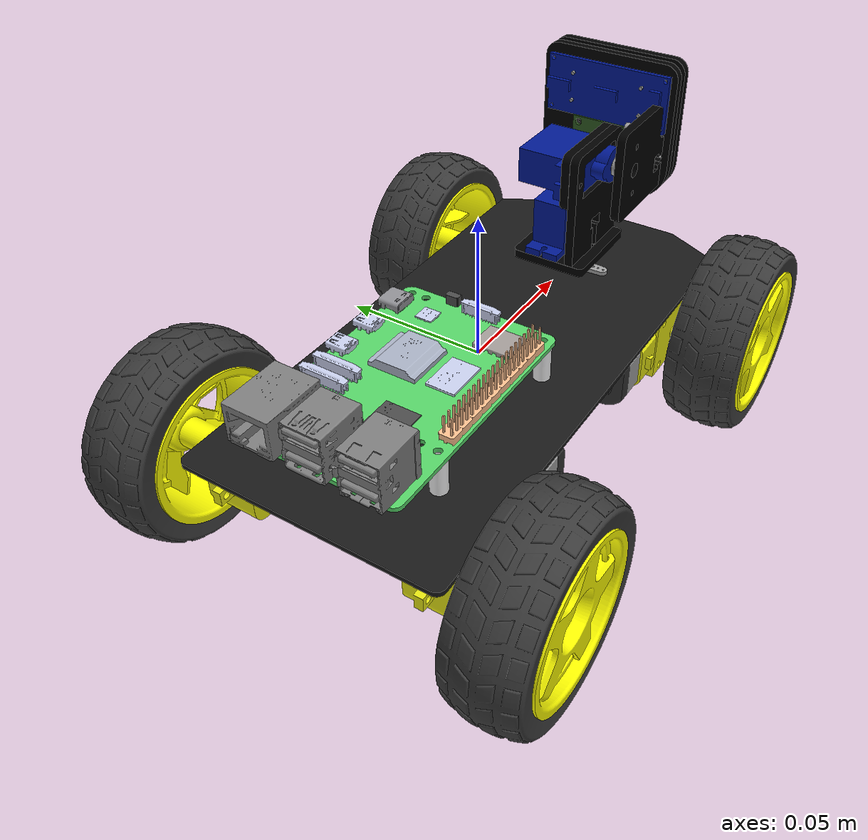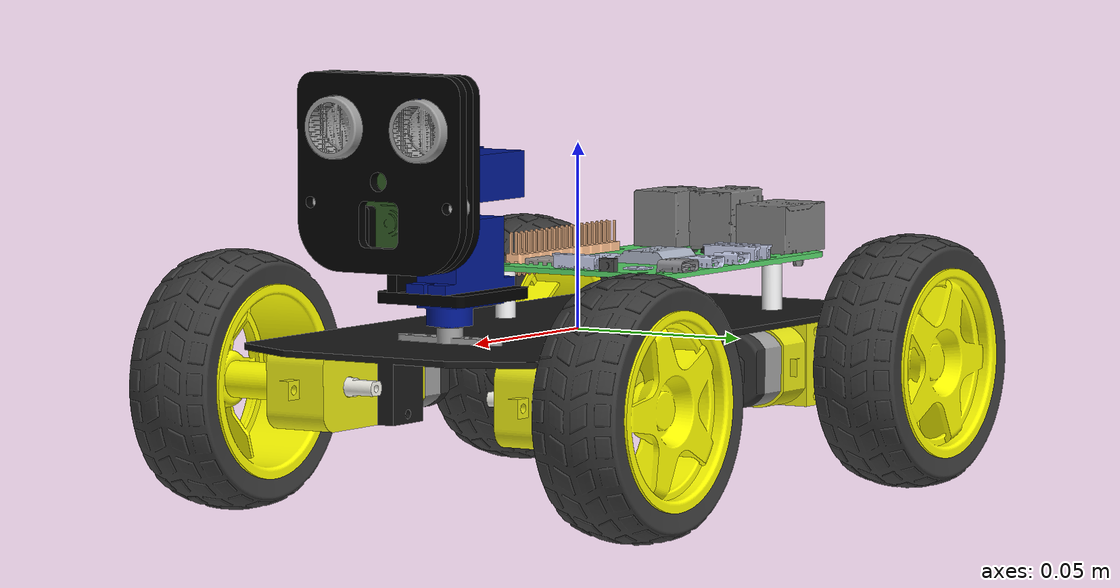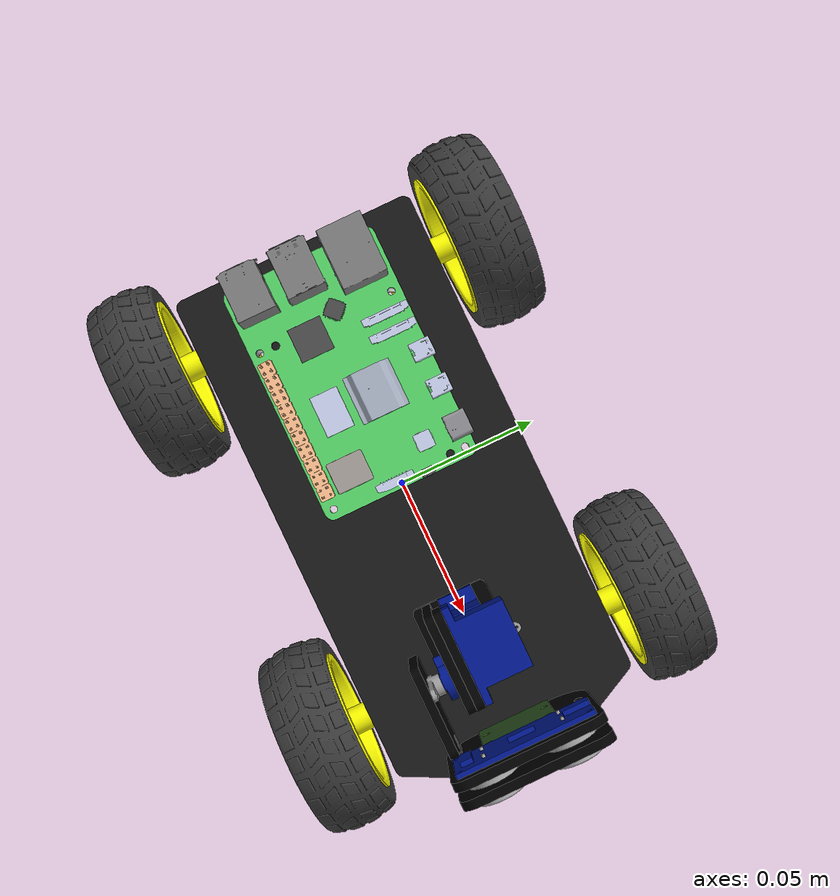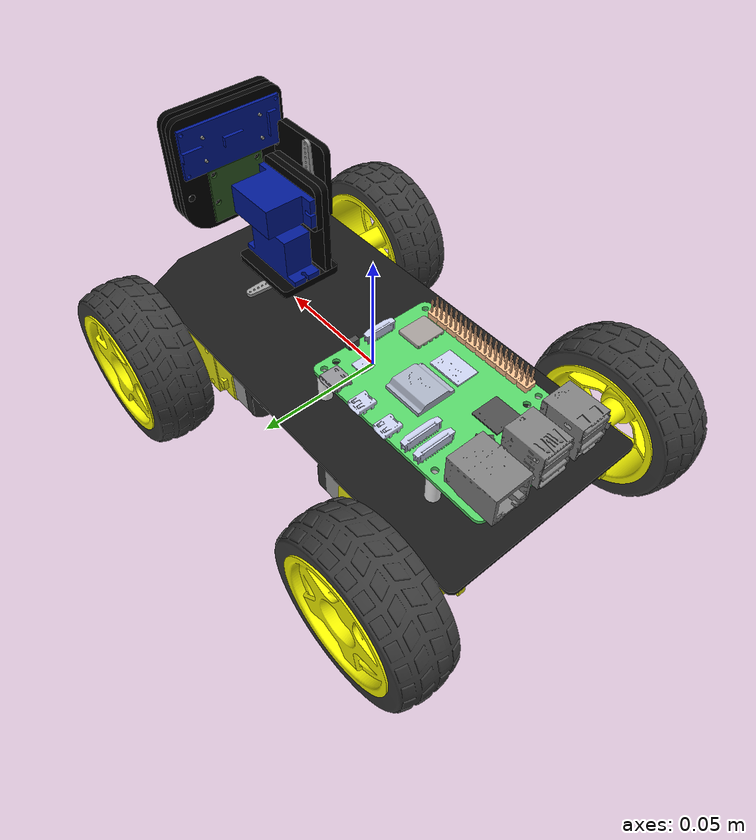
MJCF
<!-- Generated using Fusion2Mujoco v1.0 -->
<!-- https://github.com/jgillick/Fusion2Mujoco -->
<mujoco model="Freenove4WD">
    <compiler angle="radian" />
    <default>
        <mesh scale="0.001 0.001 0.001" />
        <geom contype="0" conaffinity="0" group="2" />
        <default class="collision">
            <geom contype="1" conaffinity="1" group="3" pos="0 0 0" mass="0.0" />
        </default>
    </default>
    <custom>
        <numeric name="ground_offset" data="0.0457855" />
    </custom>
    <asset>
        <mesh name="MainPCB_visual" file="meshes/MainPCB/visual.stl" />
        <mesh name="MainPCB_collision00" file="meshes/MainPCB/collision00.stl" />
        <mesh name="motor_visual" file="meshes/motor/visual.stl" />
        <mesh name="gearbox_visual" file="meshes/gearbox/visual.stl" />
        <mesh name="motor_bottom_visual" file="meshes/motor_bottom/visual.stl" />
        <mesh name="axel_visual" file="meshes/axel/visual.stl" />
        <mesh name="tire_visual" file="meshes/tire/visual.stl" />
        <mesh name="wheel_hub_visual" file="meshes/wheel_hub/visual.stl" />
        <mesh name="PiSpacers_visual" file="meshes/PiSpacers/visual.stl" />
        <mesh name="servo_visual" file="meshes/servo/visual.stl" />
        <mesh name="baseplate_visual" file="meshes/baseplate/visual.stl" />
        <mesh name="vertical_plate_visual" file="meshes/vertical_plate/visual.stl" />
        <mesh name="horizontal_plate_visual" file="meshes/horizontal_plate/visual.stl" />
        <mesh name="camera_visual" file="meshes/camera/visual.stl" />
        <mesh name="Ultrasonic_HC-SR04_PCB_visual" file="meshes/Ultrasonic_HC-SR04_PCB/visual.stl" />
        <mesh name="Ultrasonic_Can_visual" file="meshes/Ultrasonic_Can/visual.stl" />
        <mesh name="servo_horn_visual" file="meshes/servo_horn/visual.stl" />
        <mesh name="headplate_rear_visual" file="meshes/headplate_rear/visual.stl" />
        <mesh name="headplate_front_visual" file="meshes/headplate_front/visual.stl" />
        <mesh name="headplate_front_collision00" file="meshes/headplate_front/collision00.stl" />
        <mesh name="servo2_holder_visual" file="meshes/servo2_holder/visual.stl" />
        <mesh name="headplate_spacer_visual" file="meshes/headplate_spacer/visual.stl" />
        <mesh name="PLATE_RASPBERRY_PI_5_visual" file="meshes/PLATE_RASPBERRY_PI_5/visual.stl" />
        <mesh name="METAL_PLATE._visual" file="meshes/METAL_PLATE./visual.stl" />
        <mesh name="USB_Ethernet_visual" file="meshes/USB_Ethernet/visual.stl" />
        <mesh name="FEMALE_MICRO_HDMI_CONNECTOR_visual" file="meshes/FEMALE_MICRO_HDMI_CONNECTOR/visual.stl" />
        <mesh name="FEMALE_USB_CONNECTOR_visual" file="meshes/FEMALE_USB_CONNECTOR/visual.stl" />
        <mesh name="3.0_PIN_HEADER_10_visual" file="meshes/3.0_PIN_HEADER_10/visual.stl" />
        <mesh name="9FD77_D9WHV_visual" file="meshes/9FD77_D9WHV/visual.stl" />
        <mesh name="GIGABIT_ETHERNET_TRANSCEIVER_visual" file="meshes/GIGABIT_ETHERNET_TRANSCEIVER/visual.stl" />
        <mesh name="RP1_CO_CONTROLLER_visual" file="meshes/RP1_CO_CONTROLLER/visual.stl" />
        <mesh name="BROADCOM_1_visual" file="meshes/BROADCOM_1/visual.stl" />
        <mesh name="MxL_visual" file="meshes/MxL/visual.stl" />
        <mesh name="CAMERA_DISPLAY_1_visual" file="meshes/CAMERA_DISPLAY_1/visual.stl" />
        <mesh name="BUTTON_2_visual" file="meshes/BUTTON_2/visual.stl" />
        <mesh name="CAMERA_DISPLAY_2_visual" file="meshes/CAMERA_DISPLAY_2/visual.stl" />
        <material name="MainPCB_mat" rgba="0.0980 0.0980 0.0980 1.0000" roughness="0.7071" />
        <material name="motor_mat" rgba="0.6275 0.6275 0.6275 1.0000" roughness="0.2000" />
        <material name="gearbox_mat" rgba="0.9137 0.9137 0.0706 1.0000" roughness="0.2000" />
        <material name="motor_bottom_mat" rgba="0.1961 0.1961 0.1961 1.0000" roughness="0.2000" />
        <material name="axel_mat" rgba="0.9725 0.9686 0.9294 1.0000" roughness="0.2000" />
        <material name="tire_mat" rgba="0.2275 0.2275 0.2275 1.0000" roughness="0.2000" />
        <material name="wheel_hub_mat" rgba="1.0000 1.0000 0.0000 1.0000" roughness="0.2000" />
        <material name="PiSpacers_mat" rgba="0.9608 0.9608 0.9647 1.0000" roughness="0.2646" />
        <material name="servo_mat" rgba="0.0039 0.0980 0.5765 1.0000" roughness="0.2646" />
        <material name="baseplate_mat" rgba="0.0000 0.0000 0.0000 1.0000" roughness="0.2646" />
        <material name="vertical_plate_mat" rgba="0.0000 0.0000 0.0000 1.0000" roughness="0.2646" />
        <material name="horizontal_plate_mat" rgba="0.0000 0.0000 0.0000 1.0000" roughness="0.2646" />
        <material name="camera_mat" rgba="0.1804 0.3451 0.1333 1.0000" roughness="0.2646" />
        <material name="Ultrasonic_HC-SR04_PCB_mat" rgba="0.0039 0.0980 0.5765 1.0000" roughness="0.2646" />
        <material name="Ultrasonic_Can_mat" rgba="0.6275 0.6275 0.6275 1.0000" roughness="0.2646" />
        <material name="servo_horn_mat" rgba="0.6275 0.6275 0.6275 1.0000" roughness="0.2646" />
        <material name="headplate_rear_mat" rgba="0.0000 0.0000 0.0000 1.0000" roughness="0.2646" />
        <material name="headplate_front_mat" rgba="0.0000 0.0000 0.0000 1.0000" roughness="0.2646" />
        <material name="servo2_holder_mat" rgba="0.0000 0.0000 0.0000 1.0000" roughness="0.2646" />
        <material name="headplate_spacer_mat" rgba="0.6275 0.6275 0.6275 1.0000" roughness="0.2646" />
        <material name="PLATE_RASPBERRY_PI_5_mat" rgba="0.3412 0.8392 0.4118 1.0000" roughness="0.2000" />
        <material name="METAL_PLATE._mat" rgba="0.6431 0.6157 0.6000 1.0000" roughness="0.2000" />
        <material name="USB_Ethernet_mat" rgba="0.4980 0.4980 0.4980 1.0000" roughness="0.2000" />
        <material name="FEMALE_MICRO_HDMI_CONNECTOR_mat" rgba="0.7922 0.8196 0.9333 1.0000" roughness="0.2000" />
        <material name="FEMALE_USB_CONNECTOR_mat" rgba="0.5686 0.5686 0.5882 1.0000" roughness="0.2000" />
        <material name="3.0_PIN_HEADER_10_mat" rgba="1.0000 0.7569 0.5647 1.0000" roughness="0.2000" />
        <material name="9FD77_D9WHV_mat" rgba="0.7922 0.8196 0.9333 1.0000" roughness="0.2000" />
        <material name="GIGABIT_ETHERNET_TRANSCEIVER_mat" rgba="0.2980 0.2980 0.2980 1.0000" roughness="0.2000" />
        <material name="RP1_CO_CONTROLLER_mat" rgba="0.2980 0.2980 0.2980 1.0000" roughness="0.2000" />
        <material name="BROADCOM_1_mat" rgba="0.6667 0.6980 0.7686 1.0000" roughness="0.2000" />
        <material name="MxL_mat" rgba="0.7922 0.8196 0.9333 1.0000" roughness="0.2000" />
        <material name="CAMERA_DISPLAY_1_mat" rgba="0.7922 0.8196 0.9333 1.0000" roughness="0.2000" />
        <material name="BUTTON_2_mat" rgba="0.2980 0.2980 0.2980 1.0000" roughness="0.2000" />
        <material name="CAMERA_DISPLAY_2_mat" rgba="0.7922 0.8196 0.9333 1.0000" roughness="0.2000" />
    </asset>
    <worldbody>
        <!-- Lowest point of the model is at z = -0.0457855m in this frame. -->
        <!-- Lift the model by 0.0457855m to rest it on a z=0 ground plane. -->
        <body name="MainPCB" pos="0.0 0.0 0.0" quat="1.0 0.0 0.0 0.0">
            <freejoint />
            <geom mesh="MainPCB_visual" name="MainPCB_MainPCB_visual_geom" type="mesh" pos="0 0 0" quat="1 0 0 0" material="MainPCB_mat" />
            <geom mesh="MainPCB_collision00" name="MainPCB_MainPCB_collision00_geom" type="mesh" pos="0 0 0" quat="1 0 0 0" class="collision" />
            <inertial mass="0.04969745696436134" pos="0.003940462596438171 4.8292006786886e-16 -0.0011763349216851915" fullinertia="3.3674045969796535e-05 0.0001465633094517653 0.00017757150983492432 1.42267499867892e-18 -3.968191338793067e-07 -4.792103110425506e-20" />
            <body name="TT_Motor-1_gearbox" pos="0.06975000000000005 -0.035500000000000004 -0.010750000000000004" quat="1.1102230246251482e-16 6.123233995736757e-17 -6.798155367234502e-33 1.0000000000000004">
                <geom mesh="gearbox_visual" name="TT_Motor-1_gearbox_gearbox_visual_geom" type="mesh" pos="0 0 0" quat="1 0 0 0" material="gearbox_mat" />
                <inertial mass="0.01575778898400723" pos="0.007647838045918707 1.2362785200822959e-05 1.2838560109171476e-18" fullinertia="1.1035802615155104e-06 2.7495869785205253e-06 2.517636816068929e-06 -6.530352080899404e-10 1.8672378778433224e-21 8.471129210020342e-22" />
                <body name="TT_Motor-1_motor" pos="0.0 0.0 0.0" quat="1.0 -1.1588236309358302e-48 0.0 -2.0198403645931934e-45">
                    <geom mesh="motor_visual" name="TT_Motor-1_motor_motor_visual_geom" type="mesh" pos="0 0 0" quat="1 0 0 0" material="motor_mat" />
                    <inertial mass="0.002505457365802741" pos="0.040581087769524064 7.106717631643122e-16 -5.288578257858985e-19" fullinertia="1.1337249067247854e-07 8.727071603245999e-08 6.066235498198957e-08 -2.0322994975865508e-20 -6.455129895597942e-24 2.4888490746281334e-36" />
                    <body name="TT_Motor-1_motor_bottom" pos="0.0 0.0 0.0" quat="1.0 -1.1588236309358302e-48 0.0 -2.0198403645931934e-45">
                        <geom mesh="motor_bottom_visual" name="TT_Motor-1_motor_bottom_motor_bottom_visual_geom" type="mesh" pos="0 0 0" quat="1 0 0 0" material="motor_bottom_mat" />
                        <inertial mass="0.0014785534866922744" pos="0.04737679915861434 -2.610931162777616e-05 8.593536034065558e-19" fullinertia="6.115472408212138e-08 4.147877758584176e-08 2.7657843116737904e-08 1.1593560654261818e-10 1.5471649280461399e-22 -1.4198016945927107e-26" />
                    </body>
                </body>
                <body name="TT_Motor-1_axel" pos="0.0 0.0 0.0" quat="1.0 -1.1588236309358302e-48 0.0 -2.0198403645931934e-45">
                    <joint type="hinge" name="TT_Motor-1_axel" axis="-2.2204460492502973e-16 1.000000000000002 2.7192621468937766e-32" pos="4.363176486776873e-17 -0.009000000000000022 5.204170427930416e-18" />
                    <geom mesh="axel_visual" name="TT_Motor-1_axel_axel_visual_geom" type="mesh" pos="0 0 0" quat="1 0 0 0" material="axel_mat" />
                    <inertial mass="0.0006461241749733425" pos="-7.007727731434003e-15 -1.5560281355484349e-30 5.551115123125869e-17" fullinertia="5.830431374187014e-08 2.0548936501902375e-09 5.84600810556203e-08 4.36006353888671e-22 1.9075994219620194e-26 -5.33953785697667e-38" />
                    <body name="Wheel-1_wheel_hub" pos="2.6645352591003756e-17 0.03949999999999996 2.220446049250313e-18" quat="0.5 -0.4999999999999996 -0.5000000000000006 -0.499999999999999">
                        <geom mesh="wheel_hub_visual" name="Wheel-1_wheel_hub_wheel_hub_visual_geom" type="mesh" pos="0 0 0" quat="1 0 0 0" material="wheel_hub_mat" />
                        <inertial mass="0.011938919494955614" pos="-7.819421472543562e-09 -6.36977149885815e-09 -0.011307235755000157" fullinertia="3.1229404558114746e-06 3.1224416351565473e-06 4.85821032072987e-06 1.1158639709805023e-12 -4.956449001767603e-13 -4.454134276639007e-13" />
                        <body name="Wheel-1_tire" pos="0.0 0.0 0.0" quat="1.0 -1.1235958579290084e-45 -3.239600292441965e-48 -2.9870780960627204e-33">
                            <geom mesh="tire_visual" name="Wheel-1_tire_tire_visual_geom" type="mesh" pos="0 0 0" quat="1 0 0 0" material="tire_mat" />
                            <geom name="Wheel-1_tire_collision_geom" type="cylinder" size="0.0345 0.01275" pos="0 0 -0.0125" quat="1 0 0 0" class="collision" />
                            <inertial mass="0.010748872242976432" pos="9.273393769104754e-08 5.2862387714403266e-08 -0.01250121014581524" fullinertia="6.022496836837409e-06 6.022546174471783e-06 1.052643674515779e-05 2.873002085123115e-12 -1.3900669682906549e-12 -2.0127280725037815e-12" />
                        </body>
                    </body>
                </body>
            </body>
            <body name="TT_Motor-2_gearbox" pos="-0.06975000000000003 -0.03549999999999997 -0.01125" quat="1.0000000000000002 0.0 0.0 -1.1102230246251543e-16">
                <geom mesh="gearbox_visual" name="TT_Motor-2_gearbox_gearbox_visual_geom" type="mesh" pos="0 0 0" quat="1 0 0 0" material="gearbox_mat" />
                <inertial mass="0.01575778898400723" pos="0.007647838045918702 1.236278520082295e-05 2.220446049250313e-18" fullinertia="1.1035802615155023e-06 2.7495869785205084e-06 2.5176368160689154e-06 -6.530352080831631e-10 -1.8807909613156567e-37 8.470329472543015e-22" />
                <body name="TT_Motor-2_motor" pos="0.0 -4.440892098500626e-18 0.0" quat="1.0 0.0 0.0 -4.598010586065806e-46">
                    <geom mesh="motor_visual" name="TT_Motor-2_motor_motor_visual_geom" type="mesh" pos="0 0 0" quat="1 0 0 0" material="motor_mat" />
                    <inertial mass="0.002505457365802741" pos="0.04058108776952402 7.017899789673106e-16 0.0" fullinertia="1.1337249067247795e-07 8.727071603245988e-08 6.06623549819955e-08 -1.9475962028611178e-20 0.0 0.0" />
                    <body name="TT_Motor-2_motor_bottom" pos="0.0 -4.440892098500626e-18 0.0" quat="1.0 0.0 0.0 -4.598010586065806e-46">
                        <geom mesh="motor_bottom_visual" name="TT_Motor-2_motor_bottom_motor_bottom_visual_geom" type="mesh" pos="0 0 0" quat="1 0 0 0" material="motor_bottom_mat" />
                        <inertial mass="0.0014785534866922744" pos="0.047376799158614265 -2.610931162777614e-05 0.0" fullinertia="6.11547240821213e-08 4.147877758584063e-08 2.7657843116741715e-08 1.1593560654261802e-10 1.058791184067877e-22 -1.0587911840678766e-22" />
                    </body>
                </body>
                <body name="TT_Motor-2_axel" pos="0.0 -4.440892098500626e-18 0.0" quat="1.0 0.0 0.0 -4.598010586065806e-46">
                    <joint type="hinge" name="TT_Motor-2_axel" axis="-2.2204460492503091e-16 1.0000000000000013 0.0" pos="2.9753977059954234e-17 -0.009000000000000041 0.0" />
                    <geom mesh="axel_visual" name="TT_Motor-2_axel_axel_visual_geom" type="mesh" pos="0 0 0" quat="1 0 0 0" material="axel_mat" />
                    <inertial mass="0.0006461241749733425" pos="-7.016609515630999e-15 4.440892098499074e-18 5.551115123125783e-17" fullinertia="5.8304313741869957e-08 2.054893650188541e-09 5.8460081055618603e-08 2.2424811707509513e-22 1.0587911840678768e-22 -5.293955920339382e-23" />
                    <body name="Wheel-2_wheel_hub" pos="-8.881784197001253e-18 -0.03949999999999999 -4.440892098500626e-18" quat="0.5 0.5 0.5000000000000007 -0.49999999999999933">
                        <geom mesh="wheel_hub_visual" name="Wheel-2_wheel_hub_wheel_hub_visual_geom" type="mesh" pos="0 0 0" quat="1 0 0 0" material="wheel_hub_mat" />
                        <inertial mass="0.011938919494955614" pos="-7.819421472543565e-09 -6.369771494997785e-09 -0.01130723575500016" fullinertia="3.1229404558114763e-06 3.1224416351565337e-06 4.858210320729867e-06 1.1158639709804411e-12 -4.956449035648929e-13 -4.4541345399811886e-13" />
                        <body name="Wheel-2_tire" pos="0.0 0.0 -8.881784197001253e-18" quat="1.0 5.020340165244845e-46 -7.184391540726713e-48 2.351898550868226e-33">
                            <geom mesh="tire_visual" name="Wheel-2_tire_tire_visual_geom" type="mesh" pos="0 0 0" quat="1 0 0 0" material="tire_mat" />
                            <geom name="Wheel-2_tire_collision_geom" type="cylinder" size="0.0345 0.01275" pos="0 0 -0.0125" quat="1 0 0 0" class="collision" />
                            <inertial mass="0.010748872242976432" pos="9.273393769104757e-08 5.286238769996982e-08 -0.012501210145815253" fullinertia="6.022496836837397e-06 6.022546174471783e-06 1.0526436745157787e-05 2.873002086817187e-12 -1.39006696913769e-12 -2.012728077279916e-12" />
                        </body>
                    </body>
                </body>
            </body>
            <body name="TT_Motor-3_gearbox" pos="0.06975000000000002 0.03550000000000001 -0.011250000000000003" quat="1.1102230246251565e-16 6.123233995736766e-17 -6.798155367234455e-33 1.0">
                <geom mesh="gearbox_visual" name="TT_Motor-3_gearbox_gearbox_visual_geom" type="mesh" pos="0 0 0" quat="1 0 0 0" material="gearbox_mat" />
                <inertial mass="0.01575778898400723" pos="0.007647838045918674 1.2362785200822933e-05 1.2838560109171478e-18" fullinertia="1.1035802615154994e-06 2.7495869785204872e-06 2.5176368160689154e-06 -6.530352080831615e-10 1.7317198333471756e-22 7.997374773095694e-26" />
                <body name="TT_Motor-3_motor" pos="0.0 0.0 0.0" quat="1.0 0.0 0.0 0.0">
                    <geom mesh="motor_visual" name="TT_Motor-3_motor_motor_visual_geom" type="mesh" pos="0 0 0" quat="1 0 0 0" material="motor_mat" />
                    <inertial mass="0.002505457365802741" pos="0.04058108776952391 7.017899789673097e-16 -5.288578257859001e-19" fullinertia="1.1337249067247724e-07 8.727071603245964e-08 6.066235498200651e-08 -1.9899478502238274e-20 9.942398851119172e-23 2.1175823681357753e-22" />
                    <body name="TT_Motor-3_motor_bottom" pos="0.0 0.0 0.0" quat="1.0 0.0 0.0 0.0">
                        <geom mesh="motor_bottom_visual" name="TT_Motor-3_motor_bottom_motor_bottom_visual_geom" type="mesh" pos="0 0 0" quat="1 0 0 0" material="motor_bottom_mat" />
                        <inertial mass="0.0014785534866922744" pos="0.04737679915861415 -2.6109311627776105e-05 8.593536034065558e-19" fullinertia="6.115472408212156e-08 4.1478777585841373e-08 2.7657843116751456e-08 1.1593560654282947e-10 1.5471649280461528e-22 -1.4198016945953042e-26" />
                    </body>
                </body>
                <body name="TT_Motor-3_axel" pos="0.0 0.0 0.0" quat="1.0 0.0 0.0 0.0">
                    <joint type="hinge" name="TT_Motor-3_axel" axis="-2.220446049250313e-16 1.0 2.719262146893782e-32" pos="1.5876189252139734e-17 -0.008999999999999987 3.4694469519536123e-18" />
                    <geom mesh="axel_visual" name="TT_Motor-3_axel_axel_visual_geom" type="mesh" pos="0 0 0" quat="1 0 0 0" material="axel_mat" />
                    <inertial mass="0.0006461241749733425" pos="-7.0077277314339886e-15 -1.5560281355484459e-30 5.551115123125869e-17" fullinertia="5.830431374186927e-08 2.0548936501898057e-09 5.84600810556203e-08 2.242481170750942e-22 1.9075994219686315e-26 5.293955920339374e-23" />
                    <body name="Wheel-3_wheel_hub" pos="1.7763568394002505e-17 -0.039499999999999924 -6.661338147750939e-18" quat="0.5 0.5000000000000002 -0.5000000000000002 0.5">
                        <geom mesh="wheel_hub_visual" name="Wheel-3_wheel_hub_wheel_hub_visual_geom" type="mesh" pos="0 0 0" quat="1 0 0 0" material="wheel_hub_mat" />
                        <inertial mass="0.011938919494955614" pos="-7.819421472543557e-09 -6.369771507739932e-09 -0.011307235755000141" fullinertia="3.1229404558114704e-06 3.12244163515652e-06 4.858210320729885e-06 1.1158639726745064e-12 -4.956449052589574e-13 -4.454134344401639e-13" />
                        <body name="Wheel-3_tire" pos="0.0 0.0 0.0" quat="1.0 -4.766246943736055e-48 5.131708243377006e-48 -1.2703590903905792e-33">
                            <geom mesh="tire_visual" name="Wheel-3_tire_tire_visual_geom" type="mesh" pos="0 0 0" quat="1 0 0 0" material="tire_mat" />
                            <geom name="Wheel-3_tire_collision_geom" type="cylinder" size="0.0345 0.01275" pos="0 0 -0.0125" quat="1 0 0 0" class="collision" />
                            <inertial mass="0.010748872242976432" pos="9.273393769104747e-08 5.286238770552147e-08 -0.012501210145815223" fullinertia="6.022496836837347e-06 6.02254617447179e-06 1.0526436745157757e-05 2.8730020851231195e-12 -1.3900669691376864e-12 -2.01272807250378e-12" />
                        </body>
                    </body>
                </body>
            </body>
            <body name="TT_Motor-4_gearbox" pos="-0.06975000000000009 0.035500000000000045 -0.01125" quat="1.0000000000000004 0.0 0.0 -1.1102230246251595e-16">
                <geom mesh="gearbox_visual" name="TT_Motor-4_gearbox_gearbox_visual_geom" type="mesh" pos="0 0 0" quat="1 0 0 0" material="gearbox_mat" />
                <inertial mass="0.01575778898400723" pos="0.007647838045918707 1.2362785200822959e-05 2.220446049250313e-18" fullinertia="1.1035802615155171e-06 2.749586978520512e-06 2.517636816068929e-06 -6.530352080763879e-10 1.880790961315666e-37 -8.47032947254302e-22" />
                <body name="TT_Motor-4_motor" pos="0.0 0.0 0.0" quat="1.0 0.0 0.0 2.4632199568209675e-46">
                    <geom mesh="motor_visual" name="TT_Motor-4_motor_motor_visual_geom" type="mesh" pos="0 0 0" quat="1 0 0 0" material="motor_mat" />
                    <inertial mass="0.002505457365802741" pos="0.040581087769524064 7.062308710658117e-16 0.0" fullinertia="1.1337249067247854e-07 8.727071603245999e-08 6.066235498199042e-08 -2.0322994975865508e-20 1.0587911840678775e-22 2.3509887016445823e-38" />
                    <body name="TT_Motor-4_motor_bottom" pos="0.0 0.0 0.0" quat="1.0 0.0 0.0 2.4632199568209675e-46">
                        <geom mesh="motor_bottom_visual" name="TT_Motor-4_motor_bottom_motor_bottom_visual_geom" type="mesh" pos="0 0 0" quat="1 0 0 0" material="motor_bottom_mat" />
                        <inertial mass="0.0014785534866922744" pos="0.04737679915861434 -2.61093116277806e-05 0.0" fullinertia="6.11547240821218e-08 4.147877758584197e-08 2.765784311673748e-08 1.1593560654282993e-10 1.5881867761018162e-22 1.058791184067878e-22" />
                    </body>
                </body>
                <body name="TT_Motor-4_axel" pos="0.0 0.0 0.0" quat="1.0 0.0 0.0 2.4632199568209675e-46">
                    <joint type="hinge" name="TT_Motor-4_axel" axis="-2.22044604925032e-16 1.000000000000002 0.0" pos="8.526512829121221e-17 -0.009000000000000064 0.0" />
                    <geom mesh="axel_visual" name="TT_Motor-4_axel_axel_visual_geom" type="mesh" pos="0 0 0" quat="1 0 0 0" material="axel_mat" />
                    <inertial mass="0.0006461241749733425" pos="-7.016609515631004e-15 4.440892098499077e-18 5.551115123125783e-17" fullinertia="5.830431374186972e-08 2.0548936501893905e-09 5.846008105561945e-08 1.2489880261519289e-23 -1.0587911840678775e-22 -2.3509887016445823e-38" />
                    <body name="Wheel-4_wheel_hub" pos="2.6645352591003756e-17 0.03949999999999995 0.0" quat="0.5 -0.4999999999999987 0.49999999999999967 0.499999999999999">
                        <geom mesh="wheel_hub_visual" name="Wheel-4_wheel_hub_wheel_hub_visual_geom" type="mesh" pos="0 0 0" quat="1 0 0 0" material="wheel_hub_mat" />
                        <inertial mass="0.011938919494955614" pos="-7.819421472543549e-09 -6.369771494997787e-09 -0.01130723575500012" fullinertia="3.1229404558115042e-06 3.1224416351565405e-06 4.85821032072984e-06 1.1158639709805e-12 -4.956449035648908e-13 -4.4541343366932737e-13" />
                        <body name="Wheel-4_tire" pos="0.0 0.0 0.0" quat="1.0 8.121106999615741e-47 7.247281110916916e-49 -1.9055386355858462e-33">
                            <geom mesh="tire_visual" name="Wheel-4_tire_tire_visual_geom" type="mesh" pos="0 0 0" quat="1 0 0 0" material="tire_mat" />
                            <geom name="Wheel-4_tire_collision_geom" type="cylinder" size="0.0345 0.01275" pos="0 0 -0.0125" quat="1 0 0 0" class="collision" />
                            <inertial mass="0.010748872242976432" pos="9.273393769104737e-08 5.286238769996983e-08 -0.0125012101458152" fullinertia="6.022496836837347e-06 6.02254617447179e-06 1.0526436745157706e-05 2.8730020851231094e-12 -1.3900669691376844e-12 -2.012728077279912e-12" />
                        </body>
                    </body>
                </body>
            </body>
            <body name="servo_horn-2" pos="0.062250000000000014 8.881784197001253e-18 0.0016999999999999993" quat="0.5 0.5000000000000008 -0.5 -0.5000000000000008">
                <geom mesh="servo_horn_visual" name="servo_horn-2_servo_horn_visual_geom" type="mesh" pos="0 0 0" quat="1 0 0 0" material="servo_horn_mat" />
                <inertial mass="0.0018784057300893977" pos="-2.319853108330522e-18 0.0011856424877559953 1.0606626688058896e-13" fullinertia="6.745551917590005e-09 1.1805202726927926e-07 1.1463638105962948e-07 5.727477642778224e-24 -2.1788126860317075e-23 -1.0688497003165219e-19" />
                <body name="servo-2" pos="1.7763568394002505e-17 0.03199999999999994 0.0052000000000000665" quat="-7.451937132874994e-16 0.7071067811865474 7.451937132874983e-16 -0.7071067811865474">
                    <joint type="hinge" name="servo-2" axis="2.107726111852697e-15 -1.0000000000000004 6.776263578034395e-21" pos="0.0051999999999999885 0.03020000000000001 9.200204561987517e-18" range="-1.570796 1.570796" limited="true" />
                    <geom mesh="servo_visual" name="servo-2_servo_visual_geom" type="mesh" pos="0 0 0" quat="1 0 0 0" material="servo_mat" />
                    <inertial mass="0.007635909596826658" pos="0.0004087928164055472 0.012858551669205187 -2.6383960880616063e-10" fullinertia="5.076103465663985e-07 4.551936909041343e-07 7.783858203243506e-07 -3.902525156972801e-08 9.652630069806546e-15 3.350039191702096e-14" />
                    <body name="baseplate" pos="1.7763568394002505e-17 0.01859999999999998 3.1086244689504417e-17" quat="0.4999999999999998 -0.4999999999999998 0.5000000000000002 0.5000000000000002">
                        <geom mesh="baseplate_visual" name="baseplate_baseplate_visual_geom" type="mesh" pos="0 0 0" quat="1 0 0 0" material="baseplate_mat" />
                        <inertial mass="0.001771560833840395" pos="0.0029809520666862644 1.7170150896058107e-19 0.001500000000000002" fullinertia="2.021633014185345e-07 1.4460033548428384e-07 3.441062956520576e-07 -2.6927519394675154e-22 -1.227881771771867e-23 2.0724031918993953e-22" />
                        <body name="vertical_plate" pos="0.009100000000000009 -8.881784197001253e-18 -0.04000000000000001" quat="2.0903917151689066e-18 0.7071067811865475 1.198473261164518e-16 0.7071067811865476">
                            <geom mesh="vertical_plate_visual" name="vertical_plate_vertical_plate_visual_geom" type="mesh" pos="0 0 0" quat="1 0 0 0" material="vertical_plate_mat" />
                            <inertial mass="0.0031953952785162367" pos="0.023020744667572778 1.7796346201753098e-18 0.0015000000000000013" fullinertia="3.328165386884044e-07 4.461152908091287e-07 7.741387365797589e-07 -1.4756559619594466e-21 -2.1952161514438034e-22 -4.112833240443694e-23" />
                            <body name="servo2_holder" pos="0.009999999999999992 -8.881784197001253e-18 -0.003000000000000007" quat="0.7071067811865475 -3.361985393174642e-17 8.41370804695367e-17 0.7071067811865476">
                                <geom mesh="servo2_holder_visual" name="servo2_holder_servo2_holder_visual_geom" type="mesh" pos="0 0 0" quat="1 0 0 0" material="servo2_holder_mat" />
                                <inertial mass="0.0011647422524689078" pos="-1.8103851751050115e-15 9.015334187732764e-18 0.001500000000000001" fullinertia="5.738313745046927e-08 1.4062653041232587e-07 1.9626255448409266e-07 1.7535737355907432e-22 3.2889295387469326e-23 4.953460332607074e-24" />
                                <body name="servo-1" pos="0.0 -1.7763568394002505e-17 -0.01859999999999999" quat="0.7071067811865476 0.7071067811865474 1.2754543707599446e-31 -7.269247928676059e-32">
                                    <geom mesh="servo_visual" name="servo-1_servo_visual_geom" type="mesh" pos="0 0 0" quat="1 0 0 0" material="servo_mat" />
                                    <inertial mass="0.007635909596826658" pos="0.00040879281640554267 0.012858551669205185 -2.6383960822276814e-10" fullinertia="5.076103465663989e-07 4.551936909041312e-07 7.783858203243436e-07 -3.902525156972832e-08 9.652631045916954e-15 3.350039192670404e-14" />
                                    <body name="servo_horn-1" pos="0.005200000000000005 0.03199999999999999 -8.881784197001253e-18" quat="3.4604276220676403e-16 0.7071067811865476 -7.756428283098845e-16 0.7071067811865475">
                                        <joint type="hinge" name="servo_horn-1" axis="-6.965795670312038e-16 -1.0000000000000004 -5.871022526644805e-16" pos="3.5948312740192516e-17 0.0017999999999999934 8.43235109016827e-17" range="-0.418879 1.570796" limited="true" />
                                        <geom mesh="servo_horn_visual" name="servo_horn-1_servo_horn_visual_geom" type="mesh" pos="0 0 0" quat="1 0 0 0" material="servo_horn_mat" />
                                        <inertial mass="0.0018784057300893977" pos="8.2589433103363e-19 0.0011856424877559916 1.0606696297396437e-13" fullinertia="6.7455519175891395e-09 1.1805202726928069e-07 1.1463638105962969e-07 -1.3422442040558362e-22 -5.838193549048305e-22 -1.063006295468322e-19" />
                                        <body name="horizontal_plate" pos="1.7763568394002505e-17 -0.0029999999999999983 -8.881784197001253e-18" quat="0.7071067811865469 0.7071067811865481 -1.3622739705228914e-30 1.2180414820475802e-30">
                                            <geom mesh="horizontal_plate_visual" name="horizontal_plate_horizontal_plate_visual_geom" type="mesh" pos="0 0 0" quat="1 0 0 0" material="horizontal_plate_mat" />
                                            <inertial mass="0.003191531724526138" pos="0.0005004452917532727 0.006579633169384437 -0.001500000000000002" fullinertia="3.034133653166434e-07 2.7670301355723e-07 5.753290812870863e-07 -2.702960782634281e-08 2.638090898419561e-22 1.1563727254364062e-21" />
                                            <body name="headplate_rear" pos="-0.013999999999999995 0.023800000000000036 -0.02250000000000001" quat="1.6155402338626614e-16 -3.1856326925464324e-16 0.7071067811865476 0.7071067811865475">
                                                <geom mesh="headplate_rear_visual" name="headplate_rear_headplate_rear_visual_geom" type="mesh" pos="0 0 0" quat="1 0 0 0" material="headplate_rear_mat" />
                                                <inertial mass="0.004303762556573995" pos="-0.013775176906218524 -0.0004654996584185977 0.001500000000000002" fullinertia="1.1911300162272665e-06 1.1032871208908584e-06 2.287961493283258e-06 -1.1469110586078e-08 4.561207229388613e-22 4.1460855676757374e-22" />
                                                <body name="headplate_front" pos="0.0 -2.4724520454785915e-17 0.006000000000000014" quat="1.0 -9.208878106485826e-32 -4.163336342344326e-17 1.040834085586085e-16">
                                                    <geom mesh="headplate_front_visual" name="headplate_front_headplate_front_visual_geom" type="mesh" pos="0 0 0" quat="1 0 0 0" material="headplate_front_mat" />
                                                    <geom mesh="headplate_front_collision00" name="headplate_front_headplate_front_collision00_geom" type="mesh" pos="0 0 0" quat="1 0 0 0" class="collision" />
                                                    <inertial mass="0.005929894492605302" pos="-0.012337027542701034 1.2701327162668184e-17 0.0015000000000000072" fullinertia="1.2822667476794532e-06 1.3315178002860257e-06 2.604889706226567e-06 1.3303314577752415e-21 1.0142267062603813e-20 1.1297629504793061e-22" />
                                                    <body name="headplate_spacer-1" pos="-0.01949999999999999 0.020999999999999998 -1.7763568394002505e-17" quat="3.122769040385238e-17 0.7071067811865476 -0.7071067811865474 -2.0739009292902116e-17">
                                                        <geom mesh="headplate_spacer_visual" name="headplate_spacer-1_headplate_spacer_visual_geom" type="mesh" pos="0 0 0" quat="1 0 0 0" material="headplate_spacer_mat" />
                                                        <inertial mass="0.0004993954221962891" pos="3.6598556987437433e-13 4.630438095482869e-19 0.0015000000000000035" fullinertia="1.7790959194837055e-09 1.779096282271305e-09 2.809099068460244e-09 5.2939559100607963e-23 -1.1471758662426139e-24 -2.7314632138430168e-24" />
                                                    </body>
                                                    <body name="headplate_spacer-2" pos="-0.01950000000000001 -0.021000000000000022 -0.003000000000000007" quat="0.7071067811865476 3.122769040385253e-17 2.0739009292902388e-17 0.7071067811865474">
                                                        <geom mesh="headplate_spacer_visual" name="headplate_spacer-2_headplate_spacer_visual_geom" type="mesh" pos="0 0 0" quat="1 0 0 0" material="headplate_spacer_mat" />
                                                        <inertial mass="0.0004993954221962891" pos="3.6598561437407954e-13 -4.630438095178127e-19 0.0015000000000000035" fullinertia="1.7790959194837055e-09 1.7790962822721528e-09 2.809099068460456e-09 7.257809231090126e-32 -1.1166193085622736e-24 -2.0902677359973378e-22" />
                                                    </body>
                                                </body>
                                                <body name="camera" pos="-0.022797188755020063 -7.320750543413469e-18 -0.0010000000000000143" quat="0.7071067811865476 1.9677664809263798e-17 1.9677664809264063e-17 -0.7071067811865475">
                                                    <geom mesh="camera_visual" name="camera_camera_visual_geom" type="mesh" pos="0 0 0" quat="1 0 0 0" material="camera_mat" />
                                                    <inertial mass="0.0009911384849047905" pos="1.2728917429581171e-05 -0.00014525355422996203 0.001402216812399199" fullinertia="3.6536694994653776e-08 3.442719941128548e-08 6.700775788350389e-08 -1.0651177634742297e-10 1.9203856288129993e-12 7.376435790969821e-10" />
                                                </body>
                                                <body name="Ultrasonic_HC-SR04_PCB" pos="8.881784197001253e-18 -2.0348206609627576e-17 -0.0016000000000000014" quat="0.7071067811865474 1.967646692378202e-17 1.9676466923782146e-17 -0.7071067811865477">
                                                    <geom mesh="Ultrasonic_HC-SR04_PCB_visual" name="Ultrasonic_HC-SR04_PCB_Ultrasonic_HC-SR04_PCB_visual_geom" type="mesh" pos="0 0 0" quat="1 0 0 0" material="Ultrasonic_HC-SR04_PCB_mat" />
                                                    <inertial mass="0.001750878359191598" pos="-9.953915935179518e-05 -1.0588829112371458e-17 0.0006276566053741741" fullinertia="5.585240567027819e-08 3.112577247672591e-07 3.655014916186226e-07 1.2670776090187501e-21 -2.4881336373474344e-10 1.54959563653871e-21" />
                                                    <body name="Ultrasonic_Can-2" pos="0.012999999999999996 0.0 0.0014999999999999682" quat="0.5 0.49999999999999994 0.5000000000000001 0.5">
                                                        <geom mesh="Ultrasonic_Can_visual" name="Ultrasonic_Can-2_Ultrasonic_Can_visual_geom" type="mesh" pos="0 0 0" quat="1 0 0 0" material="Ultrasonic_Can_mat" />
                                                        <inertial mass="0.005422799953896927" pos="8.977255368416716e-11 0.0032443609264433348 -3.809297132742861e-10" fullinertia="1.1739621143972101e-07 1.6174891949329904e-07 1.1872792973753902e-07 -2.214117142552593e-15 9.050981823456458e-14 9.767156441430012e-15" />
                                                    </body>
                                                    <body name="Ultrasonic_Can-1" pos="-0.01300000000000001 -8.881784197001253e-18 0.0015000000000000035" quat="0.5 0.5000000000000001 0.5000000000000001 0.5">
                                                        <geom mesh="Ultrasonic_Can_visual" name="Ultrasonic_Can-1_Ultrasonic_Can_visual_geom" type="mesh" pos="0 0 0" quat="1 0 0 0" material="Ultrasonic_Can_mat" />
                                                        <inertial mass="0.005422799953896927" pos="8.977255368416707e-11 0.0032443609264433348 -3.8092971327428614e-10" fullinertia="1.1739621143970745e-07 1.6174891949329566e-07 1.1872792973753902e-07 -2.2141171425525905e-15 9.050981908192371e-14 9.767155594397066e-15" />
                                                    </body>
                                                </body>
                                            </body>
                                        </body>
                                    </body>
                                </body>
                            </body>
                        </body>
                    </body>
                </body>
            </body>
            <body name="PiSpacers" pos="0.005750000000000002 -3.944304526105059e-33 -2.220446049250313e-18" quat="1.0 -8.758115402030107e-47 -7.778384726050997e-48 0.0">
                <geom mesh="PiSpacers_visual" name="PiSpacers_PiSpacers_visual_geom" type="mesh" pos="0 0 0" quat="1 0 0 0" material="PiSpacers_mat" />
                <inertial mass="0.003898153658927287" pos="-0.036641000000614266 2.2250578450185823e-18 0.007967499999999999" fullinertia="2.402576241961358e-06 3.341056736900983e-06 5.6415492840461436e-06 1.083429353176424e-20 -1.0587911840678754e-21 2.5738959574805848e-23" />
                <body name="PLATE_RASPBERRY_PI_5" pos="-0.0466410000000001 1.2684298056342414e-16 0.014484999999999451" quat="-4.215038172160215e-17 -6.9829626776862746e-15 9.154897966759079e-29 1.0000000000000009">
                    <geom mesh="PLATE_RASPBERRY_PI_5_visual" name="PLATE_RASPBERRY_PI_5_PLATE_RASPBERRY_PI_5_visual_geom" type="mesh" pos="0 0 0" quat="1 0 0 0" material="PLATE_RASPBERRY_PI_5_mat" />
                    <inertial mass="0.053506682002526784" pos="0.00010652334843020196 -0.00016063092176509905 0.0007221750982718499" fullinertia="1.3786602810250358e-05 3.215227584976413e-05 4.591993338438278e-05 -9.367198711154732e-10 -1.547749195200496e-09 4.129174139542261e-11" />
                    <body name="METAL_PLATE." pos="-0.03000000000000002 0.014200000000000011 0.0028500000000000014" quat="1.0 1.076624693464876e-44 2.991188361583108e-31 -7.415191002309163e-29">
                        <geom mesh="METAL_PLATE._visual" name="METAL_PLATE._METAL_PLATE._visual_geom" type="mesh" pos="0 0 0" quat="1 0 0 0" material="METAL_PLATE._mat" />
                        <inertial mass="0.0003039761641170146" pos="2.3796297990969528e-17 -1.5543122344752273e-17 -0.00011398009497838341" fullinertia="5.4507561841429645e-09 3.764531787486773e-09 9.11614753619922e-09 6.826986376860397e-24 2.160131188362098e-23 -1.3234889800847666e-23" />
                    </body>
                    <body name="USB_Ethernet" pos="0.0455 -0.017799999999999993 0.008374999999999995" quat="0.5 0.5 0.5 0.5000000000000001">
                        <geom mesh="USB_Ethernet_visual" name="USB_Ethernet_USB_Ethernet_visual_geom" type="mesh" pos="0 0 0" quat="1 0 0 0" material="USB_Ethernet_mat" />
                        <inertial mass="0.068756787947681" pos="0.01669700808964882 0.0006976232708880569 -0.010863236937883372" fullinertia="3.2881594373065373e-06 1.914376396726221e-05 1.8540842822588273e-05 -5.112883537176981e-07 -1.079764252952329e-06 -8.138773694171238e-08" />
                    </body>
                    <body name="FEMALE_MICRO_HDMI_CONNECTOR-1" pos="-0.01670000000000036 -0.02149999999999972 0.002899999999968339" quat="0.7071067811865512 0.7071067811865438 -9.875400524329061e-15 -5.299184507199962e-29">
                        <geom mesh="FEMALE_MICRO_HDMI_CONNECTOR_visual" name="FEMALE_MICRO_HDMI_CONNECTOR-1_FEMALE_MICRO_HDMI_CONNECTOR_visual_geom" type="mesh" pos="0 0 0" quat="1 0 0 0" material="FEMALE_MICRO_HDMI_CONNECTOR_mat" />
                        <inertial mass="0.0005084888358175555" pos="-1.0164323008461442e-06 0.00015843348201624227 0.0032395883923271034" fullinertia="2.0562656442686804e-09 3.6860893988674097e-09 2.4374015859389904e-09 -3.1196541272515146e-13 1.6182154589149828e-13 1.0956364207642061e-10" />
                    </body>
                    <body name="FEMALE_MICRO_HDMI_CONNECTOR-2" pos="-0.003300000000000356 -0.02149999999999991 0.0028999999999685232" quat="0.7071067811865512 0.7071067811865438 -9.875400524329061e-15 -5.299184507199962e-29">
                        <geom mesh="FEMALE_MICRO_HDMI_CONNECTOR_visual" name="FEMALE_MICRO_HDMI_CONNECTOR-2_FEMALE_MICRO_HDMI_CONNECTOR_visual_geom" type="mesh" pos="0 0 0" quat="1 0 0 0" material="FEMALE_MICRO_HDMI_CONNECTOR_mat" />
                        <inertial mass="0.0005084888358175555" pos="-1.0164323008461442e-06 0.00015843348201624227 0.0032395883923271034" fullinertia="2.0562656442685746e-09 3.6860893988675156e-09 2.437401585939202e-09 -3.119654128045608e-13 1.6182154578561916e-13 1.0956364207644708e-10" />
                    </body>
                    <body name="FEMALE_USB_CONNECTOR" pos="-0.03130000000000037 -0.021579999999999513 0.003029999999999797" quat="0.7071067811865512 0.7071067811865438 -9.875400524329061e-15 -5.299184507199962e-29">
                        <geom mesh="FEMALE_USB_CONNECTOR_visual" name="FEMALE_USB_CONNECTOR_FEMALE_USB_CONNECTOR_visual_geom" type="mesh" pos="0 0 0" quat="1 0 0 0" material="FEMALE_USB_CONNECTOR_mat" />
                        <inertial mass="0.0010186253515518948" pos="-6.41576458184468e-07 1.2851641310739828e-05 0.0028189870976713196" fullinertia="5.375937121199247e-09 1.0870011983507297e-08 7.196365547384996e-09 -3.121656872931086e-14 1.8997992937780985e-12 -3.6708994527618197e-11" />
                    </body>
                    <body name="3.0_PIN_HEADER_10" pos="-0.032860000000000035 0.024500000000000022 0.003949999999999996" quat="0.7071067811865481 2.7093882137398477e-17 -4.4358296965938615e-17 0.7071067811865469">
                        <geom mesh="3.0_PIN_HEADER_10_visual" name="3.0_PIN_HEADER_10_3.0_PIN_HEADER_10_visual_geom" type="mesh" pos="0 0 0" quat="1 0 0 0" material="3.0_PIN_HEADER_10_mat" />
                        <inertial mass="0.00539346027890533" pos="2.488040100205104e-19 -0.022860000000000057 -0.0008098629513017616" fullinertia="1.1794007698368065e-06 3.012099825510699e-08 1.1710821768193403e-06 -6.051162516935118e-22 -4.243570561445159e-22 6.60128385565836e-22" />
                    </body>
                    <body name="9FD77_D9WHV" pos="-0.009250000000000026 0.011000000000000003 0.0014500000000000047" quat="0.7071067811865476 4.504730982808397e-17 -5.639812217720087e-17 -0.7071067811865475">
                        <geom mesh="9FD77_D9WHV_visual" name="9FD77_D9WHV_9FD77_D9WHV_visual_geom" type="mesh" pos="0 0 0" quat="1 0 0 0" material="9FD77_D9WHV_mat" />
                        <inertial mass="0.0009088498134760561" pos="-1.3395471931731954e-06 -7.285014614765954e-07 0.0003992539309831576" fullinertia="1.5975390445147512e-08 7.627206708396327e-09 2.350599270818064e-08 -3.2988596274813315e-12 4.7410101646005e-13 2.5801459541172896e-13" />
                    </body>
                    <body name="GIGABIT_ETHERNET_TRANSCEIVER" pos="0.021531526527127233 -0.004557271098903822 0.001449999999999998" quat="0.9238795325112865 2.6846241430325305e-30 2.1881872453657565e-30 -0.38268343236509056">
                        <geom mesh="GIGABIT_ETHERNET_TRANSCEIVER_visual" name="GIGABIT_ETHERNET_TRANSCEIVER_GIGABIT_ETHERNET_TRANSCEIVER_visual_geom" type="mesh" pos="0 0 0" quat="1 0 0 0" material="GIGABIT_ETHERNET_TRANSCEIVER_mat" />
                        <inertial mass="0.00029995062974476415" pos="4.81537806707231e-07 9.754389524625059e-07 0.0004675534024376073" fullinertia="9.128949074991554e-10 9.134955790123768e-10 1.7698686902747856e-09 2.9962152770662085e-13 -7.553436797512548e-14 -1.5705846870154118e-13" />
                    </body>
                    <body name="RP1_CO_CONTROLLER" pos="0.01589999999999998 0.006950000000000011 0.0014500000000000068" quat="0.7071067811865476 -1.9198439515309122e-16 -6.80905382102853e-17 -0.7071067811865475">
                        <geom mesh="RP1_CO_CONTROLLER_visual" name="RP1_CO_CONTROLLER_RP1_CO_CONTROLLER_visual_geom" type="mesh" pos="0 0 0" quat="1 0 0 0" material="RP1_CO_CONTROLLER_mat" />
                        <inertial mass="0.0006777646982030709" pos="-1.374461291512203e-06 9.194317014717758e-07 0.00029983194886100314" fullinertia="8.151913792951794e-09 8.152080624080794e-09 1.6263372226990368e-08 -1.2976234130666761e-12 2.2426514694343404e-13 -1.3399559581770313e-13" />
                    </body>
                    <body name="BROADCOM_1" pos="-0.0008250000000000224 -0.005304999575896018 0.0046299999713854964" quat="-0.4999999999999999 -0.5 0.5 0.5000000000000001">
                        <geom mesh="BROADCOM_1_visual" name="BROADCOM_1_BROADCOM_1_visual_geom" type="mesh" pos="0 0 0" quat="1 0 0 0" material="BROADCOM_1_mat" />
                        <inertial mass="0.003978153398858382" pos="1.3093013662177758e-06 -0.002100980642647873 0.00849856297215054" fullinertia="1.1166658412883042e-07 2.004414073602828e-07 9.49931457185613e-08 -2.9850943644320337e-12 -3.639382316025364e-11 5.075215951976082e-12" />
                    </body>
                    <body name="MxL" pos="-0.03124000000000002 -0.012879999999999996 0.0014500000000000068" quat="0.7071067811865476 -4.669725206797032e-17 -1.4926356009743037e-17 -0.7071067811865475">
                        <geom mesh="MxL_visual" name="MxL_MxL_visual_geom" type="mesh" pos="0 0 0" quat="1 0 0 0" material="MxL_mat" />
                        <inertial mass="0.0001423979902795981" pos="4.725995465193712e-07 2.744450233581487e-07 0.00024652394714314523" fullinertia="4.3029041590238307e-10 4.3106209915961914e-10 8.553181276967777e-10 5.712394841064352e-14 -1.6610143211562348e-14 -1.0619270796349183e-14" />
                    </body>
                    <body name="CAMERA_DISPLAY_1" pos="-0.04585160398483278 0.020082103347778334 -0.0001504979610443047" quat="1.0 1.076624693464876e-44 2.991188361583108e-31 -7.415191002309163e-29">
                        <geom mesh="CAMERA_DISPLAY_1_visual" name="CAMERA_DISPLAY_1_CAMERA_DISPLAY_1_visual_geom" type="mesh" pos="0 0 0" quat="1 0 0 0" material="CAMERA_DISPLAY_1_mat" />
                        <inertial mass="0.0008629563230236492" pos="0.006418856515425381 -0.018280214070425606 0.003708614135685219" fullinertia="1.2716847695126053e-08 1.4996969331886666e-09 1.2162374235629405e-08 -6.133969092850573e-13 9.353564894615261e-11 1.6015854065663029e-12" />
                    </body>
                    <body name="BUTTON_2" pos="-0.041000000000000016 -0.00960063465279573 0.0014500000000000068" quat="0.7071067811865476 -1.5808228510950102e-17 -2.6558428428518325e-18 -0.7071067811865475">
                        <geom mesh="BUTTON_2_visual" name="BUTTON_2_BUTTON_2_visual_geom" type="mesh" pos="0 0 0" quat="1 0 0 0" material="BUTTON_2_mat" />
                        <inertial mass="0.0003277856056303155" pos="3.602712123715901e-15 -8.015799541761372e-05 0.0017466995719191247" fullinertia="5.125408996498952e-10 8.871771683857118e-10 7.454365300856935e-10 1.591800186163768e-21 1.8529439872135648e-22 -1.5571744702323425e-12" />
                    </body>
                    <body name="CAMERA_DISPLAY_2-1" pos="4.839601516721359e-05 0.0005921033477783318 -0.00015049796104431358" quat="1.0 1.076624693464876e-44 2.991188361583108e-31 -7.415191002309163e-29">
                        <geom mesh="CAMERA_DISPLAY_2_visual" name="CAMERA_DISPLAY_2-1_CAMERA_DISPLAY_2_visual_geom" type="mesh" pos="0 0 0" quat="1 0 0 0" material="CAMERA_DISPLAY_2_mat" />
                        <inertial mass="0.0010667679736946975" pos="0.006417078913657634 -0.019780049770736333 0.0037047342926384754" fullinertia="2.328872461621082e-08 1.8505476730009432e-09 2.2613688115035763e-08 -7.918232177804045e-13 1.209237298864908e-10 2.2825236610924693e-12" />
                    </body>
                    <body name="CAMERA_DISPLAY_2-2" pos="0.0062483960151672145 0.0005921033477783319 -0.00015049796104431358" quat="1.0 1.076624693464876e-44 2.991188361583108e-31 -7.415191002309163e-29">
                        <geom mesh="CAMERA_DISPLAY_2_visual" name="CAMERA_DISPLAY_2-2_CAMERA_DISPLAY_2_visual_geom" type="mesh" pos="0 0 0" quat="1 0 0 0" material="CAMERA_DISPLAY_2_mat" />
                        <inertial mass="0.0010667679736946975" pos="0.006417078913657634 -0.019780049770736333 0.0037047342926384754" fullinertia="2.3288724616211032e-08 1.8505476730022137e-09 2.261368811503661e-08 -7.91823217356888e-13 1.2092372988659667e-10 2.2825236610395298e-12" />
                    </body>
                </body>
            </body>
        </body>
    </worldbody>
</mujoco>
